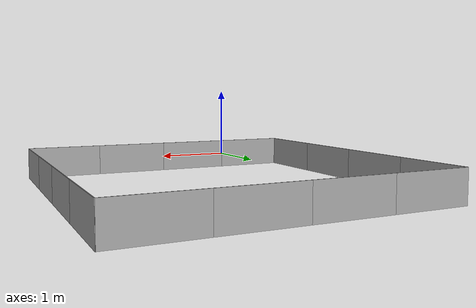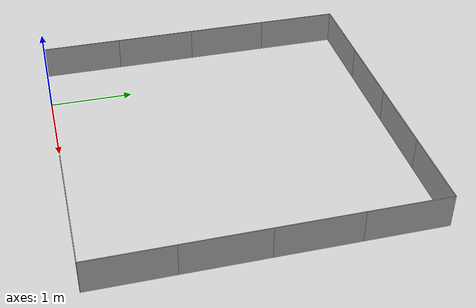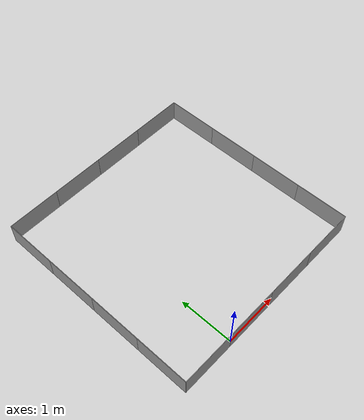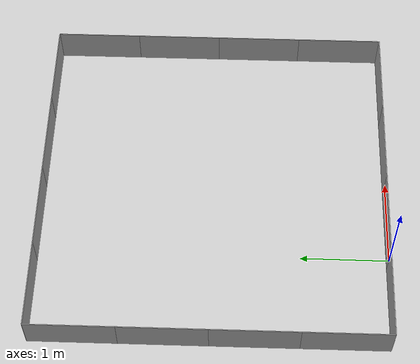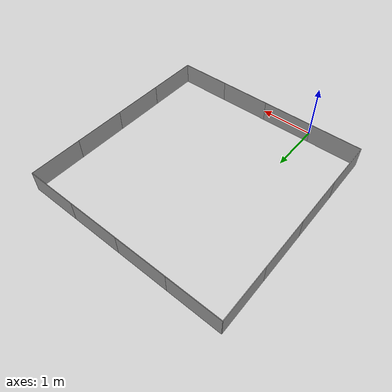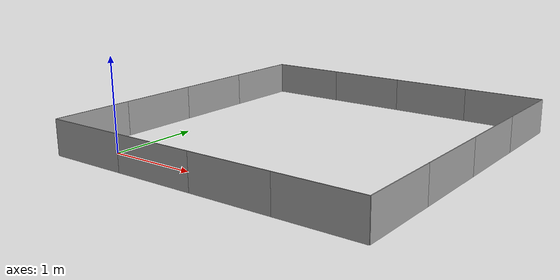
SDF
<?xml version='1.0'?>
<sdf version="1.7">
 <model name="enclosure">
  <model name="wall_section_00">
   <link name="link">
    <inertial>
     <mass>0.2</mass>
     <inertia>
      <ixx>0.0333333</ixx>
      <ixy>0</ixy>
      <ixz>0</ixz>
      <iyy>0.0333333</iyy>
      <iyz>0</iyz>
      <izz>0.0333333</izz>
     </inertia>
     <pose>0 0 0 0 -0 0</pose>
    </inertial>
    <self_collide>0</self_collide>
    <enable_wind>0</enable_wind>
    <kinematic>0</kinematic>
    <pose>0 0 0 0 -0 0</pose>
    <gravity>1</gravity>
    <visual name="visual">
     <geometry>
      <box>
       <size>1 0.01 0.42</size>
      </box>
     </geometry>
     <material>
      <script>
       <name>Gazebo/Grey</name>
       <uri>file://media/materials/scripts/gazebo.material</uri>
      </script>
      <shader type="pixel">
       <normal_map>__default__</normal_map>
      </shader>
      <ambient>0.3 0.3 0.3 1</ambient>
      <diffuse>0.7 0.7 0.7 1</diffuse>
      <specular>0.01 0.01 0.01 1</specular>
      <emissive>1 1 1 1</emissive>
     </material>
     <pose>0 0 0 0 -0 0</pose>
     <transparency>0</transparency>
     <cast_shadows>1</cast_shadows>
    </visual>
    <collision name="collision_1">
     <laser_retro>0</laser_retro>
     <max_contacts>10</max_contacts>
     <pose>0 0 0 0 -0 0</pose>
     <geometry>
      <box>
       <size>1 0.01 0.42</size>
      </box>
     </geometry>
     <surface>
      <friction>
       <ode>
        <mu>1</mu>
        <mu2>1</mu2>
        <fdir1>0 0 0</fdir1>
        <slip1>0</slip1>
        <slip2>0</slip2>
       </ode>
       <torsional>
        <coefficient>1</coefficient>
        <patch_radius>0</patch_radius>
        <surface_radius>0</surface_radius>
        <use_patch_radius>1</use_patch_radius>
        <ode>
         <slip>0</slip>
        </ode>
       </torsional>
      </friction>
      <bounce>
       <restitution_coefficient>0</restitution_coefficient>
       <threshold>1e+06</threshold>
      </bounce>
      <contact>
       <collide_without_contact>0</collide_without_contact>
       <collide_without_contact_bitmask>1</collide_without_contact_bitmask>
       <collide_bitmask>1</collide_bitmask>
       <ode>
        <soft_cfm>0</soft_cfm>
        <soft_erp>0.2</soft_erp>
        <kp>1e+13</kp>
        <kd>1</kd>
        <max_vel>0.01</max_vel>
        <min_depth>0</min_depth>
       </ode>
       <bullet>
        <split_impulse>1</split_impulse>
        <split_impulse_penetration_threshold>-0.01</split_impulse_penetration_threshold>
        <soft_cfm>0</soft_cfm>
        <soft_erp>0.2</soft_erp>
        <kp>1e+13</kp>
        <kd>1</kd>
       </bullet>
      </contact>
     </surface>
    </collision>
   </link>
   <static>0</static>
   <allow_auto_disable>1</allow_auto_disable>
   <pose>-0.5 0 0 0 -0 0</pose>
  </model>
  <model name="wall_section_01">
   <link name="link">
    <inertial>
     <mass>0.2</mass>
     <inertia>
      <ixx>0.0333333</ixx>
      <ixy>0</ixy>
      <ixz>0</ixz>
      <iyy>0.0333333</iyy>
      <iyz>0</iyz>
      <izz>0.0333333</izz>
     </inertia>
     <pose>0 0 0 0 -0 0</pose>
    </inertial>
    <self_collide>0</self_collide>
    <enable_wind>0</enable_wind>
    <kinematic>0</kinematic>
    <pose>0 0 0 0 -0 0</pose>
    <gravity>1</gravity>
    <visual name="visual">
     <geometry>
      <box>
       <size>1 0.01 0.42</size>
      </box>
     </geometry>
     <material>
      <script>
       <name>Gazebo/Grey</name>
       <uri>file://media/materials/scripts/gazebo.material</uri>
      </script>
      <shader type="pixel">
       <normal_map>__default__</normal_map>
      </shader>
      <ambient>0.3 0.3 0.3 1</ambient>
      <diffuse>0.7 0.7 0.7 1</diffuse>
      <specular>0.01 0.01 0.01 1</specular>
      <emissive>1 1 1 1</emissive>
     </material>
     <pose>0 0 0 0 -0 0</pose>
     <transparency>0</transparency>
     <cast_shadows>1</cast_shadows>
    </visual>
    <collision name="collision_1">
     <laser_retro>0</laser_retro>
     <max_contacts>10</max_contacts>
     <pose>0 0 0 0 -0 0</pose>
     <geometry>
      <box>
       <size>1 0.01 0.42</size>
      </box>
     </geometry>
     <surface>
      <friction>
       <ode>
        <mu>1</mu>
        <mu2>1</mu2>
        <fdir1>0 0 0</fdir1>
        <slip1>0</slip1>
        <slip2>0</slip2>
       </ode>
       <torsional>
        <coefficient>1</coefficient>
        <patch_radius>0</patch_radius>
        <surface_radius>0</surface_radius>
        <use_patch_radius>1</use_patch_radius>
        <ode>
         <slip>0</slip>
        </ode>
       </torsional>
      </friction>
      <bounce>
       <restitution_coefficient>0</restitution_coefficient>
       <threshold>1e+06</threshold>
      </bounce>
      <contact>
       <collide_without_contact>0</collide_without_contact>
       <collide_without_contact_bitmask>1</collide_without_contact_bitmask>
       <collide_bitmask>1</collide_bitmask>
       <ode>
        <soft_cfm>0</soft_cfm>
        <soft_erp>0.2</soft_erp>
        <kp>1e+13</kp>
        <kd>1</kd>
        <max_vel>0.01</max_vel>
        <min_depth>0</min_depth>
       </ode>
       <bullet>
        <split_impulse>1</split_impulse>
        <split_impulse_penetration_threshold>-0.01</split_impulse_penetration_threshold>
        <soft_cfm>0</soft_cfm>
        <soft_erp>0.2</soft_erp>
        <kp>1e+13</kp>
        <kd>1</kd>
       </bullet>
      </contact>
     </surface>
    </collision>
   </link>
   <static>0</static>
   <allow_auto_disable>1</allow_auto_disable>
   <pose>0.5 0 0 0 -0 0</pose>
  </model>
  <model name="wall_section_02">
   <link name="link">
    <inertial>
     <mass>0.2</mass>
     <inertia>
      <ixx>0.0333333</ixx>
      <ixy>0</ixy>
      <ixz>0</ixz>
      <iyy>0.0333333</iyy>
      <iyz>0</iyz>
      <izz>0.0333333</izz>
     </inertia>
     <pose>0 0 0 0 -0 0</pose>
    </inertial>
    <self_collide>0</self_collide>
    <enable_wind>0</enable_wind>
    <kinematic>0</kinematic>
    <pose>0 0 0 0 -0 0</pose>
    <gravity>1</gravity>
    <visual name="visual">
     <geometry>
      <box>
       <size>1 0.01 0.42</size>
      </box>
     </geometry>
     <material>
      <script>
       <name>Gazebo/Grey</name>
       <uri>file://media/materials/scripts/gazebo.material</uri>
      </script>
      <shader type="pixel">
       <normal_map>__default__</normal_map>
      </shader>
      <ambient>0.3 0.3 0.3 1</ambient>
      <diffuse>0.7 0.7 0.7 1</diffuse>
      <specular>0.01 0.01 0.01 1</specular>
      <emissive>1 1 1 1</emissive>
     </material>
     <pose>0 0 0 0 -0 0</pose>
     <transparency>0</transparency>
     <cast_shadows>1</cast_shadows>
    </visual>
    <collision name="collision_1">
     <laser_retro>0</laser_retro>
     <max_contacts>10</max_contacts>
     <pose>0 0 0 0 -0 0</pose>
     <geometry>
      <box>
       <size>1 0.01 0.42</size>
      </box>
     </geometry>
     <surface>
      <friction>
       <ode>
        <mu>1</mu>
        <mu2>1</mu2>
        <fdir1>0 0 0</fdir1>
        <slip1>0</slip1>
        <slip2>0</slip2>
       </ode>
       <torsional>
        <coefficient>1</coefficient>
        <patch_radius>0</patch_radius>
        <surface_radius>0</surface_radius>
        <use_patch_radius>1</use_patch_radius>
        <ode>
         <slip>0</slip>
        </ode>
       </torsional>
      </friction>
      <bounce>
       <restitution_coefficient>0</restitution_coefficient>
       <threshold>1e+06</threshold>
      </bounce>
      <contact>
       <collide_without_contact>0</collide_without_contact>
       <collide_without_contact_bitmask>1</collide_without_contact_bitmask>
       <collide_bitmask>1</collide_bitmask>
       <ode>
        <soft_cfm>0</soft_cfm>
        <soft_erp>0.2</soft_erp>
        <kp>1e+13</kp>
        <kd>1</kd>
        <max_vel>0.01</max_vel>
        <min_depth>0</min_depth>
       </ode>
       <bullet>
        <split_impulse>1</split_impulse>
        <split_impulse_penetration_threshold>-0.01</split_impulse_penetration_threshold>
        <soft_cfm>0</soft_cfm>
        <soft_erp>0.2</soft_erp>
        <kp>1e+13</kp>
        <kd>1</kd>
       </bullet>
      </contact>
     </surface>
    </collision>
   </link>
   <static>0</static>
   <allow_auto_disable>1</allow_auto_disable>
   <pose>1.5 0 0 0 -0 0</pose>
  </model>
  <model name="wall_section_03">
   <link name="link">
    <inertial>
     <mass>0.2</mass>
     <inertia>
      <ixx>0.0333333</ixx>
      <ixy>0</ixy>
      <ixz>0</ixz>
      <iyy>0.0333333</iyy>
      <iyz>0</iyz>
      <izz>0.0333333</izz>
     </inertia>
     <pose>0 0 0 0 -0 0</pose>
    </inertial>
    <self_collide>0</self_collide>
    <enable_wind>0</enable_wind>
    <kinematic>0</kinematic>
    <pose>0 0 0 0 -0 0</pose>
    <gravity>1</gravity>
    <visual name="visual">
     <geometry>
      <box>
       <size>1 0.01 0.42</size>
      </box>
     </geometry>
     <material>
      <script>
       <name>Gazebo/Grey</name>
       <uri>file://media/materials/scripts/gazebo.material</uri>
      </script>
      <shader type="pixel">
       <normal_map>__default__</normal_map>
      </shader>
      <ambient>0.3 0.3 0.3 1</ambient>
      <diffuse>0.7 0.7 0.7 1</diffuse>
      <specular>0.01 0.01 0.01 1</specular>
      <emissive>1 1 1 1</emissive>
     </material>
     <pose>0 0 0 0 -0 0</pose>
     <transparency>0</transparency>
     <cast_shadows>1</cast_shadows>
    </visual>
    <collision name="collision_1">
     <laser_retro>0</laser_retro>
     <max_contacts>10</max_contacts>
     <pose>0 0 0 0 -0 0</pose>
     <geometry>
      <box>
       <size>1 0.01 0.42</size>
      </box>
     </geometry>
     <surface>
      <friction>
       <ode>
        <mu>1</mu>
        <mu2>1</mu2>
        <fdir1>0 0 0</fdir1>
        <slip1>0</slip1>
        <slip2>0</slip2>
       </ode>
       <torsional>
        <coefficient>1</coefficient>
        <patch_radius>0</patch_radius>
        <surface_radius>0</surface_radius>
        <use_patch_radius>1</use_patch_radius>
        <ode>
         <slip>0</slip>
        </ode>
       </torsional>
      </friction>
      <bounce>
       <restitution_coefficient>0</restitution_coefficient>
       <threshold>1e+06</threshold>
      </bounce>
      <contact>
       <collide_without_contact>0</collide_without_contact>
       <collide_without_contact_bitmask>1</collide_without_contact_bitmask>
       <collide_bitmask>1</collide_bitmask>
       <ode>
        <soft_cfm>0</soft_cfm>
        <soft_erp>0.2</soft_erp>
        <kp>1e+13</kp>
        <kd>1</kd>
        <max_vel>0.01</max_vel>
        <min_depth>0</min_depth>
       </ode>
       <bullet>
        <split_impulse>1</split_impulse>
        <split_impulse_penetration_threshold>-0.01</split_impulse_penetration_threshold>
        <soft_cfm>0</soft_cfm>
        <soft_erp>0.2</soft_erp>
        <kp>1e+13</kp>
        <kd>1</kd>
       </bullet>
      </contact>
     </surface>
    </collision>
   </link>
   <static>0</static>
   <allow_auto_disable>1</allow_auto_disable>
   <pose>2.5 0 0 0 -0 0</pose>
  </model>
  <model name="wall_section_04">
   <link name="link">
    <inertial>
     <mass>0.2</mass>
     <inertia>
      <ixx>0.0333333</ixx>
      <ixy>0</ixy>
      <ixz>0</ixz>
      <iyy>0.0333333</iyy>
      <iyz>0</iyz>
      <izz>0.0333333</izz>
     </inertia>
     <pose>0 0 0 0 -0 0</pose>
    </inertial>
    <self_collide>0</self_collide>
    <enable_wind>0</enable_wind>
    <kinematic>0</kinematic>
    <pose>0 0 0 0 -0 0</pose>
    <gravity>1</gravity>
    <visual name="visual">
     <geometry>
      <box>
       <size>1 0.01 0.42</size>
      </box>
     </geometry>
     <material>
      <script>
       <name>Gazebo/Grey</name>
       <uri>file://media/materials/scripts/gazebo.material</uri>
      </script>
      <shader type="pixel">
       <normal_map>__default__</normal_map>
      </shader>
      <ambient>0.3 0.3 0.3 1</ambient>
      <diffuse>0.7 0.7 0.7 1</diffuse>
      <specular>0.01 0.01 0.01 1</specular>
      <emissive>1 1 1 1</emissive>
     </material>
     <pose>0 0 0 0 -0 0</pose>
     <transparency>0</transparency>
     <cast_shadows>1</cast_shadows>
    </visual>
    <collision name="collision_1">
     <laser_retro>0</laser_retro>
     <max_contacts>10</max_contacts>
     <pose>0 0 0 0 -0 0</pose>
     <geometry>
      <box>
       <size>1 0.01 0.42</size>
      </box>
     </geometry>
     <surface>
      <friction>
       <ode>
        <mu>1</mu>
        <mu2>1</mu2>
        <fdir1>0 0 0</fdir1>
        <slip1>0</slip1>
        <slip2>0</slip2>
       </ode>
       <torsional>
        <coefficient>1</coefficient>
        <patch_radius>0</patch_radius>
        <surface_radius>0</surface_radius>
        <use_patch_radius>1</use_patch_radius>
        <ode>
         <slip>0</slip>
        </ode>
       </torsional>
      </friction>
      <bounce>
       <restitution_coefficient>0</restitution_coefficient>
       <threshold>1e+06</threshold>
      </bounce>
      <contact>
       <collide_without_contact>0</collide_without_contact>
       <collide_without_contact_bitmask>1</collide_without_contact_bitmask>
       <collide_bitmask>1</collide_bitmask>
       <ode>
        <soft_cfm>0</soft_cfm>
        <soft_erp>0.2</soft_erp>
        <kp>1e+13</kp>
        <kd>1</kd>
        <max_vel>0.01</max_vel>
        <min_depth>0</min_depth>
       </ode>
       <bullet>
        <split_impulse>1</split_impulse>
        <split_impulse_penetration_threshold>-0.01</split_impulse_penetration_threshold>
        <soft_cfm>0</soft_cfm>
        <soft_erp>0.2</soft_erp>
        <kp>1e+13</kp>
        <kd>1</kd>
       </bullet>
      </contact>
     </surface>
    </collision>
   </link>
   <static>0</static>
   <allow_auto_disable>1</allow_auto_disable>
   <pose>3 0.5 0 0 -0 1.5708</pose>
  </model>
  <model name="wall_section_05">
   <link name="link">
    <inertial>
     <mass>0.2</mass>
     <inertia>
      <ixx>0.0333333</ixx>
      <ixy>0</ixy>
      <ixz>0</ixz>
      <iyy>0.0333333</iyy>
      <iyz>0</iyz>
      <izz>0.0333333</izz>
     </inertia>
     <pose>0 0 0 0 -0 0</pose>
    </inertial>
    <self_collide>0</self_collide>
    <enable_wind>0</enable_wind>
    <kinematic>0</kinematic>
    <pose>0 0 0 0 -0 0</pose>
    <gravity>1</gravity>
    <visual name="visual">
     <geometry>
      <box>
       <size>1 0.01 0.42</size>
      </box>
     </geometry>
     <material>
      <script>
       <name>Gazebo/Grey</name>
       <uri>file://media/materials/scripts/gazebo.material</uri>
      </script>
      <shader type="pixel">
       <normal_map>__default__</normal_map>
      </shader>
      <ambient>0.3 0.3 0.3 1</ambient>
      <diffuse>0.7 0.7 0.7 1</diffuse>
      <specular>0.01 0.01 0.01 1</specular>
      <emissive>1 1 1 1</emissive>
     </material>
     <pose>0 0 0 0 -0 0</pose>
     <transparency>0</transparency>
     <cast_shadows>1</cast_shadows>
    </visual>
    <collision name="collision_1">
     <laser_retro>0</laser_retro>
     <max_contacts>10</max_contacts>
     <pose>0 0 0 0 -0 0</pose>
     <geometry>
      <box>
       <size>1 0.01 0.42</size>
      </box>
     </geometry>
     <surface>
      <friction>
       <ode>
        <mu>1</mu>
        <mu2>1</mu2>
        <fdir1>0 0 0</fdir1>
        <slip1>0</slip1>
        <slip2>0</slip2>
       </ode>
       <torsional>
        <coefficient>1</coefficient>
        <patch_radius>0</patch_radius>
        <surface_radius>0</surface_radius>
        <use_patch_radius>1</use_patch_radius>
        <ode>
         <slip>0</slip>
        </ode>
       </torsional>
      </friction>
      <bounce>
       <restitution_coefficient>0</restitution_coefficient>
       <threshold>1e+06</threshold>
      </bounce>
      <contact>
       <collide_without_contact>0</collide_without_contact>
       <collide_without_contact_bitmask>1</collide_without_contact_bitmask>
       <collide_bitmask>1</collide_bitmask>
       <ode>
        <soft_cfm>0</soft_cfm>
        <soft_erp>0.2</soft_erp>
        <kp>1e+13</kp>
        <kd>1</kd>
        <max_vel>0.01</max_vel>
        <min_depth>0</min_depth>
       </ode>
       <bullet>
        <split_impulse>1</split_impulse>
        <split_impulse_penetration_threshold>-0.01</split_impulse_penetration_threshold>
        <soft_cfm>0</soft_cfm>
        <soft_erp>0.2</soft_erp>
        <kp>1e+13</kp>
        <kd>1</kd>
       </bullet>
      </contact>
     </surface>
    </collision>
   </link>
   <static>0</static>
   <allow_auto_disable>1</allow_auto_disable>
   <pose>3 1.5 0 0 -0 1.5708</pose>
  </model>
  <model name="wall_section_06">
   <link name="link">
    <inertial>
     <mass>0.2</mass>
     <inertia>
      <ixx>0.0333333</ixx>
      <ixy>0</ixy>
      <ixz>0</ixz>
      <iyy>0.0333333</iyy>
      <iyz>0</iyz>
      <izz>0.0333333</izz>
     </inertia>
     <pose>0 0 0 0 -0 0</pose>
    </inertial>
    <self_collide>0</self_collide>
    <enable_wind>0</enable_wind>
    <kinematic>0</kinematic>
    <pose>0 0 0 0 -0 0</pose>
    <gravity>1</gravity>
    <visual name="visual">
     <geometry>
      <box>
       <size>1 0.01 0.42</size>
      </box>
     </geometry>
     <material>
      <script>
       <name>Gazebo/Grey</name>
       <uri>file://media/materials/scripts/gazebo.material</uri>
      </script>
      <shader type="pixel">
       <normal_map>__default__</normal_map>
      </shader>
      <ambient>0.3 0.3 0.3 1</ambient>
      <diffuse>0.7 0.7 0.7 1</diffuse>
      <specular>0.01 0.01 0.01 1</specular>
      <emissive>1 1 1 1</emissive>
     </material>
     <pose>0 0 0 0 -0 0</pose>
     <transparency>0</transparency>
     <cast_shadows>1</cast_shadows>
    </visual>
    <collision name="collision_1">
     <laser_retro>0</laser_retro>
     <max_contacts>10</max_contacts>
     <pose>0 0 0 0 -0 0</pose>
     <geometry>
      <box>
       <size>1 0.01 0.42</size>
      </box>
     </geometry>
     <surface>
      <friction>
       <ode>
        <mu>1</mu>
        <mu2>1</mu2>
        <fdir1>0 0 0</fdir1>
        <slip1>0</slip1>
        <slip2>0</slip2>
       </ode>
       <torsional>
        <coefficient>1</coefficient>
        <patch_radius>0</patch_radius>
        <surface_radius>0</surface_radius>
        <use_patch_radius>1</use_patch_radius>
        <ode>
         <slip>0</slip>
        </ode>
       </torsional>
      </friction>
      <bounce>
       <restitution_coefficient>0</restitution_coefficient>
       <threshold>1e+06</threshold>
      </bounce>
      <contact>
       <collide_without_contact>0</collide_without_contact>
       <collide_without_contact_bitmask>1</collide_without_contact_bitmask>
       <collide_bitmask>1</collide_bitmask>
       <ode>
        <soft_cfm>0</soft_cfm>
        <soft_erp>0.2</soft_erp>
        <kp>1e+13</kp>
        <kd>1</kd>
        <max_vel>0.01</max_vel>
        <min_depth>0</min_depth>
       </ode>
       <bullet>
        <split_impulse>1</split_impulse>
        <split_impulse_penetration_threshold>-0.01</split_impulse_penetration_threshold>
        <soft_cfm>0</soft_cfm>
        <soft_erp>0.2</soft_erp>
        <kp>1e+13</kp>
        <kd>1</kd>
       </bullet>
      </contact>
     </surface>
    </collision>
   </link>
   <static>0</static>
   <allow_auto_disable>1</allow_auto_disable>
   <pose>3 2.5 0 0 -0 1.5708</pose>
  </model>
  <model name="wall_section_07">
   <link name="link">
    <inertial>
     <mass>0.2</mass>
     <inertia>
      <ixx>0.0333333</ixx>
      <ixy>0</ixy>
      <ixz>0</ixz>
      <iyy>0.0333333</iyy>
      <iyz>0</iyz>
      <izz>0.0333333</izz>
     </inertia>
     <pose>0 0 0 0 -0 0</pose>
    </inertial>
    <self_collide>0</self_collide>
    <enable_wind>0</enable_wind>
    <kinematic>0</kinematic>
    <pose>0 0 0 0 -0 0</pose>
    <gravity>1</gravity>
    <visual name="visual">
     <geometry>
      <box>
       <size>1 0.01 0.42</size>
      </box>
     </geometry>
     <material>
      <script>
       <name>Gazebo/Grey</name>
       <uri>file://media/materials/scripts/gazebo.material</uri>
      </script>
      <shader type="pixel">
       <normal_map>__default__</normal_map>
      </shader>
      <ambient>0.3 0.3 0.3 1</ambient>
      <diffuse>0.7 0.7 0.7 1</diffuse>
      <specular>0.01 0.01 0.01 1</specular>
      <emissive>1 1 1 1</emissive>
     </material>
     <pose>0 0 0 0 -0 0</pose>
     <transparency>0</transparency>
     <cast_shadows>1</cast_shadows>
    </visual>
    <collision name="collision_1">
     <laser_retro>0</laser_retro>
     <max_contacts>10</max_contacts>
     <pose>0 0 0 0 -0 0</pose>
     <geometry>
      <box>
       <size>1 0.01 0.42</size>
      </box>
     </geometry>
     <surface>
      <friction>
       <ode>
        <mu>1</mu>
        <mu2>1</mu2>
        <fdir1>0 0 0</fdir1>
        <slip1>0</slip1>
        <slip2>0</slip2>
       </ode>
       <torsional>
        <coefficient>1</coefficient>
        <patch_radius>0</patch_radius>
        <surface_radius>0</surface_radius>
        <use_patch_radius>1</use_patch_radius>
        <ode>
         <slip>0</slip>
        </ode>
       </torsional>
      </friction>
      <bounce>
       <restitution_coefficient>0</restitution_coefficient>
       <threshold>1e+06</threshold>
      </bounce>
      <contact>
       <collide_without_contact>0</collide_without_contact>
       <collide_without_contact_bitmask>1</collide_without_contact_bitmask>
       <collide_bitmask>1</collide_bitmask>
       <ode>
        <soft_cfm>0</soft_cfm>
        <soft_erp>0.2</soft_erp>
        <kp>1e+13</kp>
        <kd>1</kd>
        <max_vel>0.01</max_vel>
        <min_depth>0</min_depth>
       </ode>
       <bullet>
        <split_impulse>1</split_impulse>
        <split_impulse_penetration_threshold>-0.01</split_impulse_penetration_threshold>
        <soft_cfm>0</soft_cfm>
        <soft_erp>0.2</soft_erp>
        <kp>1e+13</kp>
        <kd>1</kd>
       </bullet>
      </contact>
     </surface>
    </collision>
   </link>
   <static>0</static>
   <allow_auto_disable>1</allow_auto_disable>
   <pose>3 3.5 0 0 -0 1.5708</pose>
  </model>
  <model name="wall_section_08">
   <link name="link">
    <inertial>
     <mass>0.2</mass>
     <inertia>
      <ixx>0.0333333</ixx>
      <ixy>0</ixy>
      <ixz>0</ixz>
      <iyy>0.0333333</iyy>
      <iyz>0</iyz>
      <izz>0.0333333</izz>
     </inertia>
     <pose>0 0 0 0 -0 0</pose>
    </inertial>
    <self_collide>0</self_collide>
    <enable_wind>0</enable_wind>
    <kinematic>0</kinematic>
    <pose>0 0 0 0 -0 0</pose>
    <gravity>1</gravity>
    <visual name="visual">
     <geometry>
      <box>
       <size>1 0.01 0.42</size>
      </box>
     </geometry>
     <material>
      <script>
       <name>Gazebo/Grey</name>
       <uri>file://media/materials/scripts/gazebo.material</uri>
      </script>
      <shader type="pixel">
       <normal_map>__default__</normal_map>
      </shader>
      <ambient>0.3 0.3 0.3 1</ambient>
      <diffuse>0.7 0.7 0.7 1</diffuse>
      <specular>0.01 0.01 0.01 1</specular>
      <emissive>1 1 1 1</emissive>
     </material>
     <pose>0 0 0 0 -0 0</pose>
     <transparency>0</transparency>
     <cast_shadows>1</cast_shadows>
    </visual>
    <collision name="collision_1">
     <laser_retro>0</laser_retro>
     <max_contacts>10</max_contacts>
     <pose>0 0 0 0 -0 0</pose>
     <geometry>
      <box>
       <size>1 0.01 0.42</size>
      </box>
     </geometry>
     <surface>
      <friction>
       <ode>
        <mu>1</mu>
        <mu2>1</mu2>
        <fdir1>0 0 0</fdir1>
        <slip1>0</slip1>
        <slip2>0</slip2>
       </ode>
       <torsional>
        <coefficient>1</coefficient>
        <patch_radius>0</patch_radius>
        <surface_radius>0</surface_radius>
        <use_patch_radius>1</use_patch_radius>
        <ode>
         <slip>0</slip>
        </ode>
       </torsional>
      </friction>
      <bounce>
       <restitution_coefficient>0</restitution_coefficient>
       <threshold>1e+06</threshold>
      </bounce>
      <contact>
       <collide_without_contact>0</collide_without_contact>
       <collide_without_contact_bitmask>1</collide_without_contact_bitmask>
       <collide_bitmask>1</collide_bitmask>
       <ode>
        <soft_cfm>0</soft_cfm>
        <soft_erp>0.2</soft_erp>
        <kp>1e+13</kp>
        <kd>1</kd>
        <max_vel>0.01</max_vel>
        <min_depth>0</min_depth>
       </ode>
       <bullet>
        <split_impulse>1</split_impulse>
        <split_impulse_penetration_threshold>-0.01</split_impulse_penetration_threshold>
        <soft_cfm>0</soft_cfm>
        <soft_erp>0.2</soft_erp>
        <kp>1e+13</kp>
        <kd>1</kd>
       </bullet>
      </contact>
     </surface>
    </collision>
   </link>
   <static>0</static>
   <allow_auto_disable>1</allow_auto_disable>
   <pose>2.5 4 0 0 -0 3.14159</pose>
  </model>
  <model name="wall_section_09">
   <link name="link">
    <inertial>
     <mass>0.2</mass>
     <inertia>
      <ixx>0.0333333</ixx>
      <ixy>0</ixy>
      <ixz>0</ixz>
      <iyy>0.0333333</iyy>
      <iyz>0</iyz>
      <izz>0.0333333</izz>
     </inertia>
     <pose>0 0 0 0 -0 0</pose>
    </inertial>
    <self_collide>0</self_collide>
    <enable_wind>0</enable_wind>
    <kinematic>0</kinematic>
    <pose>0 0 0 0 -0 0</pose>
    <gravity>1</gravity>
    <visual name="visual">
     <geometry>
      <box>
       <size>1 0.01 0.42</size>
      </box>
     </geometry>
     <material>
      <script>
       <name>Gazebo/Grey</name>
       <uri>file://media/materials/scripts/gazebo.material</uri>
      </script>
      <shader type="pixel">
       <normal_map>__default__</normal_map>
      </shader>
      <ambient>0.3 0.3 0.3 1</ambient>
      <diffuse>0.7 0.7 0.7 1</diffuse>
      <specular>0.01 0.01 0.01 1</specular>
      <emissive>1 1 1 1</emissive>
     </material>
     <pose>0 0 0 0 -0 0</pose>
     <transparency>0</transparency>
     <cast_shadows>1</cast_shadows>
    </visual>
    <collision name="collision_1">
     <laser_retro>0</laser_retro>
     <max_contacts>10</max_contacts>
     <pose>0 0 0 0 -0 0</pose>
     <geometry>
      <box>
       <size>1 0.01 0.42</size>
      </box>
     </geometry>
     <surface>
      <friction>
       <ode>
        <mu>1</mu>
        <mu2>1</mu2>
        <fdir1>0 0 0</fdir1>
        <slip1>0</slip1>
        <slip2>0</slip2>
       </ode>
       <torsional>
        <coefficient>1</coefficient>
        <patch_radius>0</patch_radius>
        <surface_radius>0</surface_radius>
        <use_patch_radius>1</use_patch_radius>
        <ode>
         <slip>0</slip>
        </ode>
       </torsional>
      </friction>
      <bounce>
       <restitution_coefficient>0</restitution_coefficient>
       <threshold>1e+06</threshold>
      </bounce>
      <contact>
       <collide_without_contact>0</collide_without_contact>
       <collide_without_contact_bitmask>1</collide_without_contact_bitmask>
       <collide_bitmask>1</collide_bitmask>
       <ode>
        <soft_cfm>0</soft_cfm>
        <soft_erp>0.2</soft_erp>
        <kp>1e+13</kp>
        <kd>1</kd>
        <max_vel>0.01</max_vel>
        <min_depth>0</min_depth>
       </ode>
       <bullet>
        <split_impulse>1</split_impulse>
        <split_impulse_penetration_threshold>-0.01</split_impulse_penetration_threshold>
        <soft_cfm>0</soft_cfm>
        <soft_erp>0.2</soft_erp>
        <kp>1e+13</kp>
        <kd>1</kd>
       </bullet>
      </contact>
     </surface>
    </collision>
   </link>
   <static>0</static>
   <allow_auto_disable>1</allow_auto_disable>
   <pose>1.5 4 0 0 -0 3.14159</pose>
  </model>
  <model name="wall_section_10">
   <link name="link">
    <inertial>
     <mass>0.2</mass>
     <inertia>
      <ixx>0.0333333</ixx>
      <ixy>0</ixy>
      <ixz>0</ixz>
      <iyy>0.0333333</iyy>
      <iyz>0</iyz>
      <izz>0.0333333</izz>
     </inertia>
     <pose>0 0 0 0 -0 0</pose>
    </inertial>
    <self_collide>0</self_collide>
    <enable_wind>0</enable_wind>
    <kinematic>0</kinematic>
    <pose>0 0 0 0 -0 0</pose>
    <gravity>1</gravity>
    <visual name="visual">
     <geometry>
      <box>
       <size>1 0.01 0.42</size>
      </box>
     </geometry>
     <material>
      <script>
       <name>Gazebo/Grey</name>
       <uri>file://media/materials/scripts/gazebo.material</uri>
      </script>
      <shader type="pixel">
       <normal_map>__default__</normal_map>
      </shader>
      <ambient>0.3 0.3 0.3 1</ambient>
      <diffuse>0.7 0.7 0.7 1</diffuse>
      <specular>0.01 0.01 0.01 1</specular>
      <emissive>1 1 1 1</emissive>
     </material>
     <pose>0 0 0 0 -0 0</pose>
     <transparency>0</transparency>
     <cast_shadows>1</cast_shadows>
    </visual>
    <collision name="collision_1">
     <laser_retro>0</laser_retro>
     <max_contacts>10</max_contacts>
     <pose>0 0 0 0 -0 0</pose>
     <geometry>
      <box>
       <size>1 0.01 0.42</size>
      </box>
     </geometry>
     <surface>
      <friction>
       <ode>
        <mu>1</mu>
        <mu2>1</mu2>
        <fdir1>0 0 0</fdir1>
        <slip1>0</slip1>
        <slip2>0</slip2>
       </ode>
       <torsional>
        <coefficient>1</coefficient>
        <patch_radius>0</patch_radius>
        <surface_radius>0</surface_radius>
        <use_patch_radius>1</use_patch_radius>
        <ode>
         <slip>0</slip>
        </ode>
       </torsional>
      </friction>
      <bounce>
       <restitution_coefficient>0</restitution_coefficient>
       <threshold>1e+06</threshold>
      </bounce>
      <contact>
       <collide_without_contact>0</collide_without_contact>
       <collide_without_contact_bitmask>1</collide_without_contact_bitmask>
       <collide_bitmask>1</collide_bitmask>
       <ode>
        <soft_cfm>0</soft_cfm>
        <soft_erp>0.2</soft_erp>
        <kp>1e+13</kp>
        <kd>1</kd>
        <max_vel>0.01</max_vel>
        <min_depth>0</min_depth>
       </ode>
       <bullet>
        <split_impulse>1</split_impulse>
        <split_impulse_penetration_threshold>-0.01</split_impulse_penetration_threshold>
        <soft_cfm>0</soft_cfm>
        <soft_erp>0.2</soft_erp>
        <kp>1e+13</kp>
        <kd>1</kd>
       </bullet>
      </contact>
     </surface>
    </collision>
   </link>
   <static>0</static>
   <allow_auto_disable>1</allow_auto_disable>
   <pose>0.5 4 0 0 -0 3.14159</pose>
  </model>
  <model name="wall_section_11">
   <link name="link">
    <inertial>
     <mass>0.2</mass>
     <inertia>
      <ixx>0.0333333</ixx>
      <ixy>0</ixy>
      <ixz>0</ixz>
      <iyy>0.0333333</iyy>
      <iyz>0</iyz>
      <izz>0.0333333</izz>
     </inertia>
     <pose>0 0 0 0 -0 0</pose>
    </inertial>
    <self_collide>0</self_collide>
    <enable_wind>0</enable_wind>
    <kinematic>0</kinematic>
    <pose>0 0 0 0 -0 0</pose>
    <gravity>1</gravity>
    <visual name="visual">
     <geometry>
      <box>
       <size>1 0.01 0.42</size>
      </box>
     </geometry>
     <material>
      <script>
       <name>Gazebo/Grey</name>
       <uri>file://media/materials/scripts/gazebo.material</uri>
      </script>
      <shader type="pixel">
       <normal_map>__default__</normal_map>
      </shader>
      <ambient>0.3 0.3 0.3 1</ambient>
      <diffuse>0.7 0.7 0.7 1</diffuse>
      <specular>0.01 0.01 0.01 1</specular>
      <emissive>1 1 1 1</emissive>
     </material>
     <pose>0 0 0 0 -0 0</pose>
     <transparency>0</transparency>
     <cast_shadows>1</cast_shadows>
    </visual>
    <collision name="collision_1">
     <laser_retro>0</laser_retro>
     <max_contacts>10</max_contacts>
     <pose>0 0 0 0 -0 0</pose>
     <geometry>
      <box>
       <size>1 0.01 0.42</size>
      </box>
     </geometry>
     <surface>
      <friction>
       <ode>
        <mu>1</mu>
        <mu2>1</mu2>
        <fdir1>0 0 0</fdir1>
        <slip1>0</slip1>
        <slip2>0</slip2>
       </ode>
       <torsional>
        <coefficient>1</coefficient>
        <patch_radius>0</patch_radius>
        <surface_radius>0</surface_radius>
        <use_patch_radius>1</use_patch_radius>
        <ode>
         <slip>0</slip>
        </ode>
       </torsional>
      </friction>
      <bounce>
       <restitution_coefficient>0</restitution_coefficient>
       <threshold>1e+06</threshold>
      </bounce>
      <contact>
       <collide_without_contact>0</collide_without_contact>
       <collide_without_contact_bitmask>1</collide_without_contact_bitmask>
       <collide_bitmask>1</collide_bitmask>
       <ode>
        <soft_cfm>0</soft_cfm>
        <soft_erp>0.2</soft_erp>
        <kp>1e+13</kp>
        <kd>1</kd>
        <max_vel>0.01</max_vel>
        <min_depth>0</min_depth>
       </ode>
       <bullet>
        <split_impulse>1</split_impulse>
        <split_impulse_penetration_threshold>-0.01</split_impulse_penetration_threshold>
        <soft_cfm>0</soft_cfm>
        <soft_erp>0.2</soft_erp>
        <kp>1e+13</kp>
        <kd>1</kd>
       </bullet>
      </contact>
     </surface>
    </collision>
   </link>
   <static>0</static>
   <allow_auto_disable>1</allow_auto_disable>
   <pose>-0.5 4 0 0 -0 3.14159</pose>
  </model>
  <model name="wall_section_12">
   <link name="link">
    <inertial>
     <mass>0.2</mass>
     <inertia>
      <ixx>0.0333333</ixx>
      <ixy>0</ixy>
      <ixz>0</ixz>
      <iyy>0.0333333</iyy>
      <iyz>0</iyz>
      <izz>0.0333333</izz>
     </inertia>
     <pose>0 0 0 0 -0 0</pose>
    </inertial>
    <self_collide>0</self_collide>
    <enable_wind>0</enable_wind>
    <kinematic>0</kinematic>
    <pose>0 0 0 0 -0 0</pose>
    <gravity>1</gravity>
    <visual name="visual">
     <geometry>
      <box>
       <size>1 0.01 0.42</size>
      </box>
     </geometry>
     <material>
      <script>
       <name>Gazebo/Grey</name>
       <uri>file://media/materials/scripts/gazebo.material</uri>
      </script>
      <shader type="pixel">
       <normal_map>__default__</normal_map>
      </shader>
      <ambient>0.3 0.3 0.3 1</ambient>
      <diffuse>0.7 0.7 0.7 1</diffuse>
      <specular>0.01 0.01 0.01 1</specular>
      <emissive>1 1 1 1</emissive>
     </material>
     <pose>0 0 0 0 -0 0</pose>
     <transparency>0</transparency>
     <cast_shadows>1</cast_shadows>
    </visual>
    <collision name="collision_1">
     <laser_retro>0</laser_retro>
     <max_contacts>10</max_contacts>
     <pose>0 0 0 0 -0 0</pose>
     <geometry>
      <box>
       <size>1 0.01 0.42</size>
      </box>
     </geometry>
     <surface>
      <friction>
       <ode>
        <mu>1</mu>
        <mu2>1</mu2>
        <fdir1>0 0 0</fdir1>
        <slip1>0</slip1>
        <slip2>0</slip2>
       </ode>
       <torsional>
        <coefficient>1</coefficient>
        <patch_radius>0</patch_radius>
        <surface_radius>0</surface_radius>
        <use_patch_radius>1</use_patch_radius>
        <ode>
         <slip>0</slip>
        </ode>
       </torsional>
      </friction>
      <bounce>
       <restitution_coefficient>0</restitution_coefficient>
       <threshold>1e+06</threshold>
      </bounce>
      <contact>
       <collide_without_contact>0</collide_without_contact>
       <collide_without_contact_bitmask>1</collide_without_contact_bitmask>
       <collide_bitmask>1</collide_bitmask>
       <ode>
        <soft_cfm>0</soft_cfm>
        <soft_erp>0.2</soft_erp>
        <kp>1e+13</kp>
        <kd>1</kd>
        <max_vel>0.01</max_vel>
        <min_depth>0</min_depth>
       </ode>
       <bullet>
        <split_impulse>1</split_impulse>
        <split_impulse_penetration_threshold>-0.01</split_impulse_penetration_threshold>
        <soft_cfm>0</soft_cfm>
        <soft_erp>0.2</soft_erp>
        <kp>1e+13</kp>
        <kd>1</kd>
       </bullet>
      </contact>
     </surface>
    </collision>
   </link>
   <static>0</static>
   <allow_auto_disable>1</allow_auto_disable>
   <pose>-1 3.5 0 0 0 -1.57079</pose>
  </model>
  <model name="wall_section_13">
   <link name="link">
    <inertial>
     <mass>0.2</mass>
     <inertia>
      <ixx>0.0333333</ixx>
      <ixy>0</ixy>
      <ixz>0</ixz>
      <iyy>0.0333333</iyy>
      <iyz>0</iyz>
      <izz>0.0333333</izz>
     </inertia>
     <pose>0 0 0 0 -0 0</pose>
    </inertial>
    <self_collide>0</self_collide>
    <enable_wind>0</enable_wind>
    <kinematic>0</kinematic>
    <pose>0 0 0 0 -0 0</pose>
    <gravity>1</gravity>
    <visual name="visual">
     <geometry>
      <box>
       <size>1 0.01 0.42</size>
      </box>
     </geometry>
     <material>
      <script>
       <name>Gazebo/Grey</name>
       <uri>file://media/materials/scripts/gazebo.material</uri>
      </script>
      <shader type="pixel">
       <normal_map>__default__</normal_map>
      </shader>
      <ambient>0.3 0.3 0.3 1</ambient>
      <diffuse>0.7 0.7 0.7 1</diffuse>
      <specular>0.01 0.01 0.01 1</specular>
      <emissive>1 1 1 1</emissive>
     </material>
     <pose>0 0 0 0 -0 0</pose>
     <transparency>0</transparency>
     <cast_shadows>1</cast_shadows>
    </visual>
    <collision name="collision_1">
     <laser_retro>0</laser_retro>
     <max_contacts>10</max_contacts>
     <pose>0 0 0 0 -0 0</pose>
     <geometry>
      <box>
       <size>1 0.01 0.42</size>
      </box>
     </geometry>
     <surface>
      <friction>
       <ode>
        <mu>1</mu>
        <mu2>1</mu2>
        <fdir1>0 0 0</fdir1>
        <slip1>0</slip1>
        <slip2>0</slip2>
       </ode>
       <torsional>
        <coefficient>1</coefficient>
        <patch_radius>0</patch_radius>
        <surface_radius>0</surface_radius>
        <use_patch_radius>1</use_patch_radius>
        <ode>
         <slip>0</slip>
        </ode>
       </torsional>
      </friction>
      <bounce>
       <restitution_coefficient>0</restitution_coefficient>
       <threshold>1e+06</threshold>
      </bounce>
      <contact>
       <collide_without_contact>0</collide_without_contact>
       <collide_without_contact_bitmask>1</collide_without_contact_bitmask>
       <collide_bitmask>1</collide_bitmask>
       <ode>
        <soft_cfm>0</soft_cfm>
        <soft_erp>0.2</soft_erp>
        <kp>1e+13</kp>
        <kd>1</kd>
        <max_vel>0.01</max_vel>
        <min_depth>0</min_depth>
       </ode>
       <bullet>
        <split_impulse>1</split_impulse>
        <split_impulse_penetration_threshold>-0.01</split_impulse_penetration_threshold>
        <soft_cfm>0</soft_cfm>
        <soft_erp>0.2</soft_erp>
        <kp>1e+13</kp>
        <kd>1</kd>
       </bullet>
      </contact>
     </surface>
    </collision>
   </link>
   <static>0</static>
   <allow_auto_disable>1</allow_auto_disable>
   <pose>-1 2.5 0 0 0 -1.57079</pose>
  </model>
  <model name="wall_section_14">
   <link name="link">
    <inertial>
     <mass>0.2</mass>
     <inertia>
      <ixx>0.0333333</ixx>
      <ixy>0</ixy>
      <ixz>0</ixz>
      <iyy>0.0333333</iyy>
      <iyz>0</iyz>
      <izz>0.0333333</izz>
     </inertia>
     <pose>0 0 0 0 -0 0</pose>
    </inertial>
    <self_collide>0</self_collide>
    <enable_wind>0</enable_wind>
    <kinematic>0</kinematic>
    <pose>0 0 0 0 -0 0</pose>
    <gravity>1</gravity>
    <visual name="visual">
     <geometry>
      <box>
       <size>1 0.01 0.42</size>
      </box>
     </geometry>
     <material>
      <script>
       <name>Gazebo/Grey</name>
       <uri>file://media/materials/scripts/gazebo.material</uri>
      </script>
      <shader type="pixel">
       <normal_map>__default__</normal_map>
      </shader>
      <ambient>0.3 0.3 0.3 1</ambient>
      <diffuse>0.7 0.7 0.7 1</diffuse>
      <specular>0.01 0.01 0.01 1</specular>
      <emissive>1 1 1 1</emissive>
     </material>
     <pose>0 0 0 0 -0 0</pose>
     <transparency>0</transparency>
     <cast_shadows>1</cast_shadows>
    </visual>
    <collision name="collision_1">
     <laser_retro>0</laser_retro>
     <max_contacts>10</max_contacts>
     <pose>0 0 0 0 -0 0</pose>
     <geometry>
      <box>
       <size>1 0.01 0.42</size>
      </box>
     </geometry>
     <surface>
      <friction>
       <ode>
        <mu>1</mu>
        <mu2>1</mu2>
        <fdir1>0 0 0</fdir1>
        <slip1>0</slip1>
        <slip2>0</slip2>
       </ode>
       <torsional>
        <coefficient>1</coefficient>
        <patch_radius>0</patch_radius>
        <surface_radius>0</surface_radius>
        <use_patch_radius>1</use_patch_radius>
        <ode>
         <slip>0</slip>
        </ode>
       </torsional>
      </friction>
      <bounce>
       <restitution_coefficient>0</restitution_coefficient>
       <threshold>1e+06</threshold>
      </bounce>
      <contact>
       <collide_without_contact>0</collide_without_contact>
       <collide_without_contact_bitmask>1</collide_without_contact_bitmask>
       <collide_bitmask>1</collide_bitmask>
       <ode>
        <soft_cfm>0</soft_cfm>
        <soft_erp>0.2</soft_erp>
        <kp>1e+13</kp>
        <kd>1</kd>
        <max_vel>0.01</max_vel>
        <min_depth>0</min_depth>
       </ode>
       <bullet>
        <split_impulse>1</split_impulse>
        <split_impulse_penetration_threshold>-0.01</split_impulse_penetration_threshold>
        <soft_cfm>0</soft_cfm>
        <soft_erp>0.2</soft_erp>
        <kp>1e+13</kp>
        <kd>1</kd>
       </bullet>
      </contact>
     </surface>
    </collision>
   </link>
   <static>0</static>
   <allow_auto_disable>1</allow_auto_disable>
   <pose>-1 1.5 0 0 0 -1.57079</pose>
  </model>
  <model name="wall_section_15">
   <link name="link">
    <inertial>
     <mass>0.2</mass>
     <inertia>
      <ixx>0.0333333</ixx>
      <ixy>0</ixy>
      <ixz>0</ixz>
      <iyy>0.0333333</iyy>
      <iyz>0</iyz>
      <izz>0.0333333</izz>
     </inertia>
     <pose>0 0 0 0 -0 0</pose>
    </inertial>
    <self_collide>0</self_collide>
    <enable_wind>0</enable_wind>
    <kinematic>0</kinematic>
    <pose>0 0 0 0 -0 0</pose>
    <gravity>1</gravity>
    <visual name="visual">
     <geometry>
      <box>
       <size>1 0.01 0.42</size>
      </box>
     </geometry>
     <material>
      <script>
       <name>Gazebo/Grey</name>
       <uri>file://media/materials/scripts/gazebo.material</uri>
      </script>
      <shader type="pixel">
       <normal_map>__default__</normal_map>
      </shader>
      <ambient>0.3 0.3 0.3 1</ambient>
      <diffuse>0.7 0.7 0.7 1</diffuse>
      <specular>0.01 0.01 0.01 1</specular>
      <emissive>1 1 1 1</emissive>
     </material>
     <pose>0 0 0 0 -0 0</pose>
     <transparency>0</transparency>
     <cast_shadows>1</cast_shadows>
    </visual>
    <collision name="collision_1">
     <laser_retro>0</laser_retro>
     <max_contacts>10</max_contacts>
     <pose>0 0 0 0 -0 0</pose>
     <geometry>
      <box>
       <size>1 0.01 0.42</size>
      </box>
     </geometry>
     <surface>
      <friction>
       <ode>
        <mu>1</mu>
        <mu2>1</mu2>
        <fdir1>0 0 0</fdir1>
        <slip1>0</slip1>
        <slip2>0</slip2>
       </ode>
       <torsional>
        <coefficient>1</coefficient>
        <patch_radius>0</patch_radius>
        <surface_radius>0</surface_radius>
        <use_patch_radius>1</use_patch_radius>
        <ode>
         <slip>0</slip>
        </ode>
       </torsional>
      </friction>
      <bounce>
       <restitution_coefficient>0</restitution_coefficient>
       <threshold>1e+06</threshold>
      </bounce>
      <contact>
       <collide_without_contact>0</collide_without_contact>
       <collide_without_contact_bitmask>1</collide_without_contact_bitmask>
       <collide_bitmask>1</collide_bitmask>
       <ode>
        <soft_cfm>0</soft_cfm>
        <soft_erp>0.2</soft_erp>
        <kp>1e+13</kp>
        <kd>1</kd>
        <max_vel>0.01</max_vel>
        <min_depth>0</min_depth>
       </ode>
       <bullet>
        <split_impulse>1</split_impulse>
        <split_impulse_penetration_threshold>-0.01</split_impulse_penetration_threshold>
        <soft_cfm>0</soft_cfm>
        <soft_erp>0.2</soft_erp>
        <kp>1e+13</kp>
        <kd>1</kd>
       </bullet>
      </contact>
     </surface>
    </collision>
   </link>
   <static>0</static>
   <allow_auto_disable>1</allow_auto_disable>
   <pose>-1 0.5 0 0 0 -1.57079</pose>
  </model>
  <static>0</static>
  <allow_auto_disable>1</allow_auto_disable>
 </model>
</sdf>
